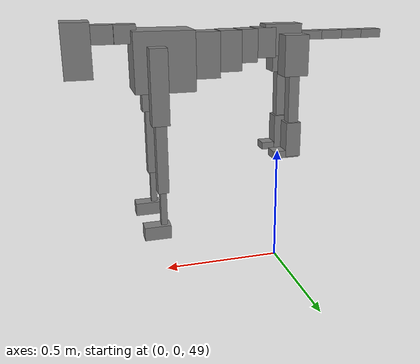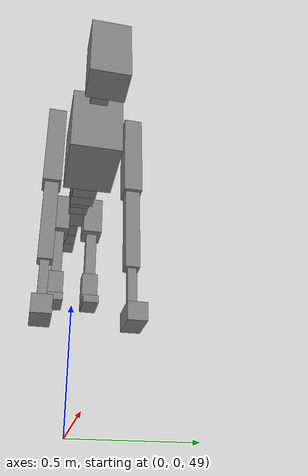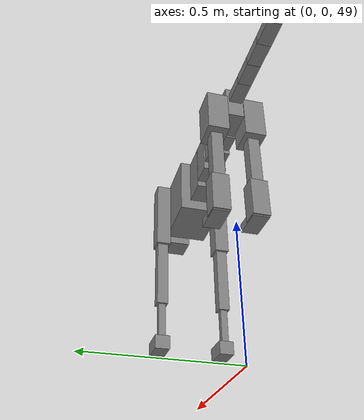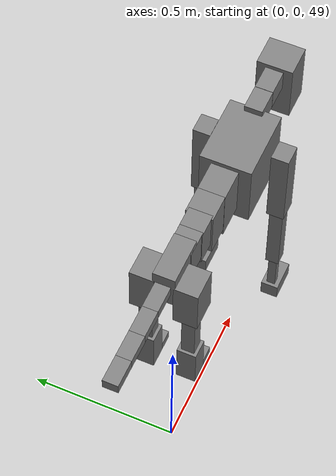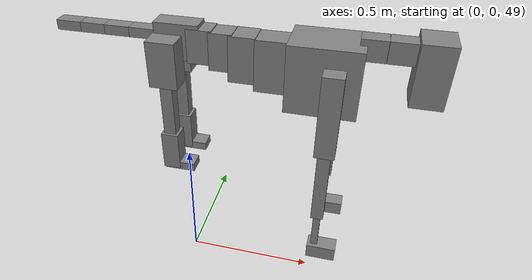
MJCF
<mujoco model="dog">

    <default>
        <joint armature="0.02" stiffness="1" damping="0.2" limited="true"/>
        <geom condim="3" friction="1 0.05 0.05" margin="0.01"/>
        <motor ctrllimited="true" ctrlrange="-1.0 1.0" forcelimited="true" gear="50"/>
    </default>

    <compiler inertiafromgeom="true" angle="radian"/>

    <option timestep="0.016" iterations="50" tolerance="1e-10" solver="Newton" jacobian="dense" cone="pyramidal"/>

    <size nconmax="20000" njmax="60000" nstack="5000000"/>
    <visual>
        <map force="0.1" zfar="30"/>
        <rgba haze="0.15 0.25 0.35 1"/>
        <quality shadowsize="2048"/>
        <global offwidth="800" offheight="800"/>
    </visual>

    <asset>
        <texture type="skybox" builtin="gradient" rgb1="0.3 0.5 0.7" rgb2="0 0 0" width="512" height="512"/>
        <texture name="texplane" type="2d" builtin="checker" rgb1=".2 .3 .4" rgb2=".1 0.15 0.2" width="512" height="512"
                 mark="cross" markrgb=".8 .8 .8"/>
        <texture name="texgeom" type="cube" builtin="flat" mark="cross" width="127" height="1278" rgb1="0.8 0.6 0.4"
                 rgb2="0.8 0.6 0.4" markrgb="1 1 1" random="0.01"/>

        <material name="matplane" reflectance="0.3" texture="texplane" texrepeat="1 1" texuniform="true"/>
        <material name="matgeom" texture="texgeom" texuniform="true" rgba="0.8 0.6 .4 1"/>
    </asset>

    <worldbody>
        <geom name="floor" pos="0 0 0" size="0 0 .25" type="plane" material="matplane" condim="3"/>

        <light directional="false" diffuse=".2 .2 .2" specular="0 0 0" pos="0 0 5" dir="0 0 -1" castshadow="false"/>
        <light mode="targetbodycom" target="torso" directional="false" diffuse=".8 .8 .8" specular="0.3 0.3 0.3"
               pos="0 0 4.0" dir="0 0 -1"/>

        <body name="root" pos="0 0 50">
            <freejoint name="root_1"/>
            <geom type="box" pos="0 0 -0.02" size="0.0774  0.0358  0.063" density="2030"/>

            <body name="spine1" pos="0.054 0 0">
                <joint name="spine1_y" axis="0 1 0" range="0 0.7" limited="true"/>
                <geom type="box" pos="0.02375 0 -0.03" size="0.04375  0.0375  0.05985" density="2030"/>

                <body name="spine2" pos="0.0612 0 0">
                    <joint name="spine2_y" axis="0 1 0" range="-0.15 0.15" limited="true"/>
                    <geom type="box" pos="0.03555  0  -0.04" size="0.04055  0.039  0.06615" density="2030"/>

                    <body name="spine3" pos="0.0730 0 0">
                        <joint name="spine3_y" axis="0 1 0" range="-0.15 0.15" limited="true"/>
                        <geom type="box" pos="0.03555  0  -0.057" size="0.04555  0.0445  0.081" density="2030"/>

                        <body name="spine4" pos="0.0780 0 0">
                            <joint name="spine4_y" axis="0 1 0" range="-0.15 0.15" limited="true"/>
                            <geom type="box" pos="0.05265  0  -0.07" size="0.05265  0.045  0.09135" density="2030"/>

                            <body name="torso" pos="0.1082 0 0">
                                <joint name="torso_y" axis="0 1 0" range="-0.15 0.15" limited="true"/>
                                <geom type="box" pos="0.11925  0  -0.085" size="0.11925  0.085  0.11745"
                                      density="2030"/>

                                <body name="neck1" pos="0.2160  0   0.0180">
                                    <joint name="neck1_y" axis="0 1 0" range="-1.2  -1" limited="true"/>
                                    <geom type="box" pos="0.0423  0  0" size="0.0423  0.03  0.036" density="2325"/>

                                    <body name="neck2" pos="0.0853  0  0">
                                        <joint name="neck2_y" axis="0 1 0" range="0.1  0" limited="true"/>
                                        <geom type="box" pos="0.0423  0  0" size="0.0423  0.03  0.036" density="2325"/>

                                        <body name="head" pos="0.0853  0  0">
                                            <joint name="head_y" axis="0 1 0" range="-0.3  -0.2" limited="true"/>
                                            <geom type="box" pos="0.0531  0  -0.055" size="0.0531  0.06  0.1044"
                                                  density="4030"/>

                                        </body>
                                    </body>
                                </body>

                                <body name="front_shoulder" pos="0.156  0   -0.0480">
                                    <joint name="front_shoulder_y" axis="0 1 0" range="-1 1.5" limited="true"/>
                                    <geom type="box" pos="0 0.13 -0.1190" size="0.0342  0.0292  0.1457" density="1158"/>
                                    <geom type="box" pos="0 -0.13 -0.1190" size="0.0342  0.0292  0.1457"
                                          density="1158"/>

                                    <body name="front_elbow" pos="0  0  -0.2381">
                                        <joint name="front_elbow_y" axis="0 1 0" range="-2 0" limited="true"/>
                                        <geom type="box" pos="0 0.13 -0.1495" size="0.0220  0.0225  0.1495"
                                              density="1081"/>
                                        <geom type="box" pos="0 -0.13 -0.1495" size="0.0220  0.0225  0.1495"
                                              density="1081"/>

                                        <body name="front_wrist" pos="0  0  -0.2989">
                                            <joint name="front_wrist_y" axis="0 1 0" range="-0.2 0" limited="true"/>
                                            <geom type="box" pos="0 0.13 -0.0760" size="0.0126  0.0140  0.0891"
                                                  density="1664"/>
                                            <geom type="box" pos="0 -0.13 -0.0760" size="0.0126  0.0140  0.0891"
                                                  density="1664"/>

                                            <body name="front_finger_end" pos="0  0  -0.1519">
                                                <joint name="front_finger_y" axis="0 1 0" range="-0.4 1"
                                                       limited="true"/>
                                                <geom type="box" pos="0.0289  0.13  -0.0124"
                                                      size="0.0530  0.0289  0.0274" density="1515"/>
                                                <geom type="box" pos="0.0289  -0.13  -0.0124"
                                                      size="0.0530  0.0289  0.0274" density="1515"/>

                                            </body>

                                        </body>
                                    </body>
                                </body>

                            </body>
                        </body>
                    </body>
                </body>
            </body>

            <body name="back_hip" pos="-0.03 0 -0.018">
                <joint name="back_hip_y" axis="0 1 0" range="-1.5 0.3" limited="true"/>
                <geom type="box" pos="0 0.07 -0.0589" size="0.0502  0.0394  0.0817" density="1154"/>
                <geom type="box" pos="0 -0.07 -0.0589" size="0.0502  0.0394  0.0817" density="1154"/>

                <body name="back_knee" pos="0  0  -0.1178">
                    <joint name="back_knee_y" axis="0 1 0" range="0 2.8" limited="true"/>
                    <geom type="box" pos="0 0.07 -0.1140" size="0.0221  0.0218  0.1295" density="1227"/>
                    <geom type="box" pos="0 -0.07 -0.1140" size="0.0221  0.0218  0.1295" density="1227"/>

                    <body name="back_ankle" pos="0  0  -0.2279">
                        <joint name="back_ankle_y" axis="0 1 0" range="-2.2 0" limited="true"/>
                        <geom type="box" pos="0 0.07 -0.0607" size="0.0317  0.0317  0.0720" density="1284"/>
                        <geom type="box" pos="0 -0.07 -0.0607" size="0.0317  0.0317  0.0720" density="1284"/>

                        <body name="back_toe_end" pos="0  0  -0.1214">
                            <joint name="back_toe_y" axis="0 1 0" range="-0.4 1" limited="true"/>
                            <geom type="box" pos="0.0305  0.07  -0.0003" size="0.0559  0.0305  0.0153" density="1515"/>
                            <geom type="box" pos="0.0305  -0.07  -0.0003" size="0.0559  0.0305  0.0153" density="1515"/>

                        </body>
                    </body>
                </body>
            </body>

            <body name="tail1" pos="-0.074 0 -0.006">
                <joint name="tail1_y" axis="0 1 0" range="-0.2 0.2" limited="true"/>
                <geom type="box" pos="-0.0536  0  0" size="0.045  0.025  0.0175" density="1587"/>

                <body name="tail2" pos="-0.09 0 0">
                    <joint name="tail2_y" axis="0 1 0" range="-0.2 0.2" limited="true"/>
                    <geom type="box" pos="-0.0536  0  0" size="0.045  0.025  0.0175" density="1587"/>

                    <body name="tail3" pos="-0.09 0 0">
                        <joint name="tail3_y" axis="0 1 0" range="-0.2 0.2" limited="true"/>
                        <geom type="box" pos="-0.0536  0  0" size="0.045  0.025  0.0175" density="1587"/>

                        <body name="tail4" pos="-0.09 0 0">
                            <joint name="tail4_y" axis="0 1 0" range="-0.2 0.2" limited="true"/>
                            <geom type="box" pos="-0.0536  0  0" size="0.045  0.025  0.0175" density="1587"/>

                        </body>
                    </body>
                </body>
            </body>
        </body>
    </worldbody>

    <actuator>
        <motor joint="spine1_y" forcerange="-150 150     "/>
        <motor joint="spine2_y" forcerange="-150 150     "/>
        <motor joint="spine3_y" forcerange="-150 150     "/>
        <motor joint="spine4_y" forcerange="-150 150     "/>
        <motor joint="torso_y" forcerange="-150 150     "/>
        <motor joint="neck1_y" forcerange="-100 100       "/>
        <motor joint="neck2_y" forcerange="-100 100       "/>
        <motor joint="head_y" forcerange="-150 150       "/>
        <motor joint="front_shoulder_y" forcerange="-128.04 166.82"/>
        <motor joint="front_elbow_y" forcerange="-153.11 110.78"/>
        <motor joint="front_wrist_y" forcerange="-51.35 60.71"/>
        <motor joint="front_finger_y" forcerange="-41.08 72.98"/>
        <motor joint="back_hip_y" forcerange="-354.35 370.64"/>
        <motor joint="back_knee_y" forcerange="-270.28 247.18"/>
        <motor joint="back_angle_y" forcerange="-235.24 172.59"/>
        <motor joint="back_toe_y" forcerange="-103.07 60.75"/>
        <motor joint="tail1_y" forcerange="-50 50     "/>
        <motor joint="tail2_y" forcerange="-50 50     "/>
        <motor joint="tail3_y" forcerange="-50 50     "/>
        <motor joint="tail4_y" forcerange="-50 50     "/>
    </actuator>
</mujoco>
